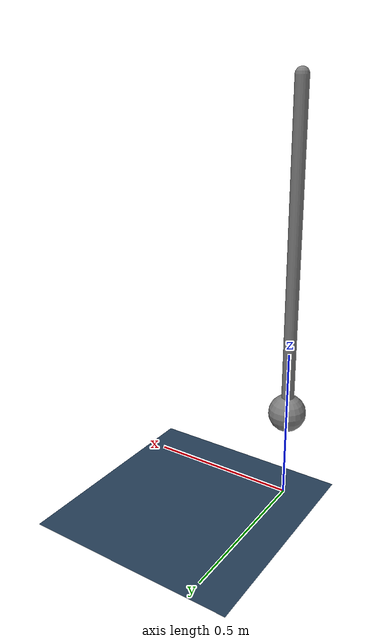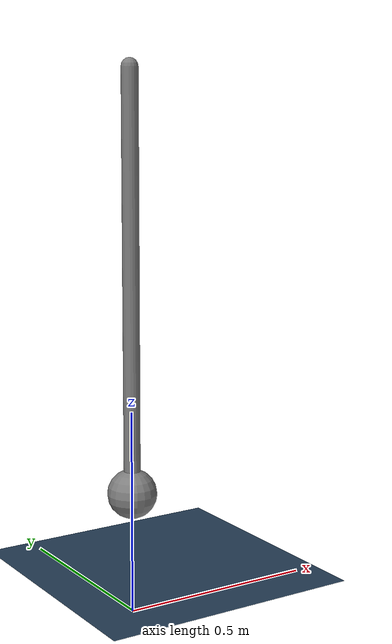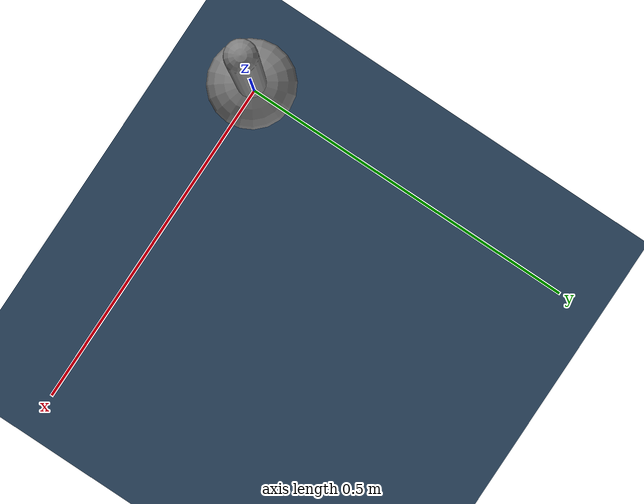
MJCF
<mujoco model="pendulum">
    <compiler angle="radian" autolimits="true"/>
    <option timestep="0.01" gravity="0 0 -9.81" integrator="RK4"/>

    <default>
        <default class="pendulum">
            <geom type="capsule" size="0.02" rgba="0.1 0.2 0.8 1"/>
            <joint axis="0 1 0" damping="0.1" armature="0.01"/>
        </default>
    </default>

    <keyframe>
        <key name="0" qpos="3" />
    </keyframe>

    <worldbody>
        <!-- Fixed base -->
        <body name="base" pos="0 0 1.3">
            <!-- Pendulum arm -->
            <body name="pendulum_arm" pos="0 0 0">
                <joint name="pendulum_joint" type="hinge" axis="0 1 0" pos="0 0 0"/>
                <geom name="pendulum_arm_geom" type="capsule" fromto="0 0 0 0 0 -1" size="0.02"/>
                <!-- Point mass at the tip -->
                <body name="pendulum_tip" pos="0 0 -1">
                    <geom name="pendulum_tip_mass" type="sphere" size="0.06" density="1000"/>
                </body>
            </body>
        </body>
    </worldbody>

    <actuator>
        <motor name = "joint_motor" joint="pendulum_joint" ctrlrange="-10 10" gear="1"/>
    </actuator>

    <sensor>
        <jointpos name="joint_pos" joint="pendulum_joint"/>
        <jointvel name="joint_vel" joint="pendulum_joint"/>
    </sensor>

  <visual>
    <headlight diffuse="0.6 0.6 0.6" ambient="0.3 0.3 0.3" specular="0 0 0"/>
    <rgba haze="0.15 0.25 0.35 1"/>
    <global azimuth="-130" elevation="-20"/>
  </visual>

  <asset>
    <texture type="skybox" builtin="gradient" rgb1="0.3 0.5 0.7" rgb2="0 0 0" width="512" height="3072"/>
    <texture type="2d" name="groundplane" builtin="checker" mark="edge" rgb1="0.2 0.3 0.4" rgb2="0.1 0.2 0.3"
      markrgb="0.8 0.8 0.8" width="300" height="300"/>
    <material name="groundplane" texture="groundplane" texuniform="true" texrepeat="5 5" reflectance="0.2"/>
  </asset>

  <worldbody>
    <light pos="0 0 1.5" dir="0 0 -1" directional="true"/>
    <geom name="floor" size="0 0 0.05" type="plane" material="groundplane"/>
    <camera name="default" pos="2 0 5" xyaxes="0 1 0 0 0 1"/>
  </worldbody>
</mujoco>
